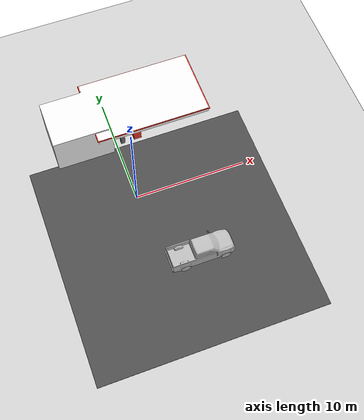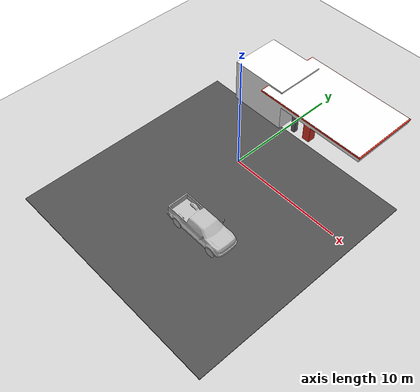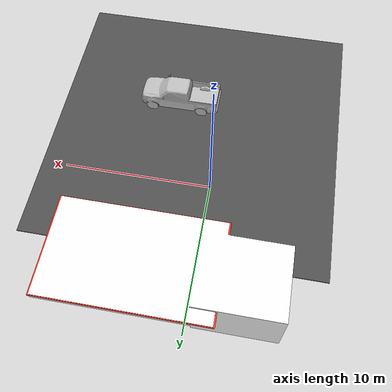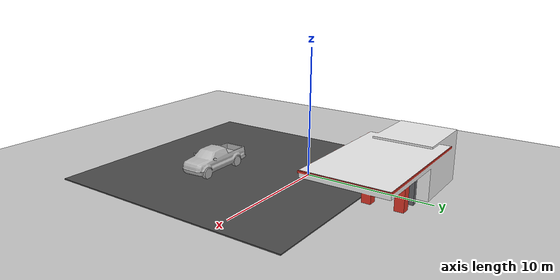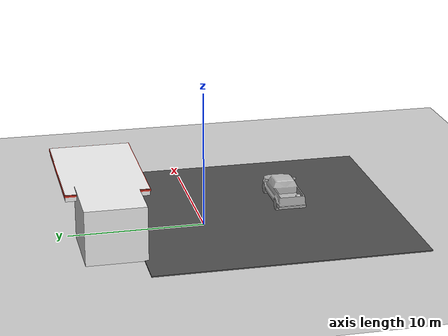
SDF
<sdf version="1.6">
 <world name="default">
  <light name="sun" type="directional">
   <pose>0 0 10 0 -0 0</pose>
   <diffuse>0.8 0.8 0.8 1</diffuse>
   <specular>0.1 0.1 0.1 1</specular>
   <attenuation>
    <range>1000</range>
    <constant>0.9</constant>
    <linear>0.01</linear>
    <quadratic>0.001</quadratic>
   </attenuation>
   <direction>-0.5 0.5 -1</direction>
  </light>
  <model name="ground_plane">
   <static>1</static>
   <link name="link">
    <collision name="collision">
     <geometry><plane><normal>0 0 1</normal><size>100 100</size></plane></geometry>
     <surface><friction><ode><mu>100</mu><mu2>50</mu2></ode></friction></surface>
    </collision>
    <visual name="visual">
     <cast_shadows>0</cast_shadows>
     <geometry><plane><normal>0 0 1</normal><size>100 100</size></plane></geometry>
     <material>
      <script><uri>file://media/materials/scripts/gazebo.material</uri><name>Gazebo/Grey</name></script>
     </material>
    </visual>
   </link>
  </model>
  <gravity>0 0 -9.8</gravity>
  <magnetic_field>6e-06 2.3e-05 -4.2e-05</magnetic_field>
  <atmosphere type="adiabatic"/>
  <physics name="default_physics" default="0" type="ode">
   <max_step_size>0.001</max_step_size>
   <real_time_factor>1</real_time_factor>
   <real_time_update_rate>1000</real_time_update_rate>
  </physics>
  <scene><ambient>0.4 0.4 0.4 1</ambient><background>0.7 0.7 0.7 1</background><shadows>1</shadows></scene>
  <spherical_coordinates>
   <surface_model>EARTH_WGS84</surface_model>
   <latitude_deg>0</latitude_deg>
   <longitude_deg>0</longitude_deg>
   <elevation>0</elevation>
   <heading_deg>0</heading_deg>
  </spherical_coordinates>
  <model name="Gas Station">
   <static>1</static>
   <link name="link">
    <collision name="collision">
     <geometry><mesh><uri>model://gas_station/meshes/gas_station.dae</uri><scale>1 1 1</scale></mesh></geometry>
    </collision>
    <visual name="visual">
     <geometry><mesh><uri>model://gas_station/meshes/gas_station.dae</uri><scale>1 1 1</scale></mesh></geometry>
     <material>
      <script>
       <uri>model://gas_station/materials/scripts</uri>
       <uri>model://gas_station/materials/textures</uri>
       <name>GasStation/Diffuse</name>
      </script>
      <shader type="normal_map_object_space"><normal_map>GasStation_Normal.png</normal_map></shader>
     </material>
    </visual>
   </link>
   <pose>0.828735 7.23732 0 0 -0 0</pose>
  </model>
  <model name="asphalt_plane">
   <static>1</static>
   <link name="link">
    <collision name="collision"><geometry><box><size>20 20 0.1</size></box></geometry></collision>
    <visual name="visual">
     <cast_shadows>0</cast_shadows>
     <geometry><box><size>20 20 0.1</size></box></geometry>
     <material>
      <script>
       <uri>model://asphalt_plane/materials/scripts</uri>
       <uri>model://asphalt_plane/materials/textures</uri>
       <name>vrc/asphalt</name>
      </script>
     </material>
    </visual>
   </link>
   <pose>1.73064 -4.67533 0 0 -0 0</pose>
  </model>
  <model name="pickup">
   <static>1</static>
   <link name="link">
    <collision name="collision">
     <pose>0 0 0 0 0 -1.5708</pose>
     <geometry><mesh><uri>model://pickup/meshes/pickup.dae</uri><scale>1 1 1</scale></mesh></geometry>
    </collision>
    <visual name="visual">
     <pose>0 0 0 0 0 -1.5708</pose>
     <geometry><mesh><uri>model://pickup/meshes/pickup.dae</uri><scale>1 1 1</scale></mesh></geometry>
    </visual>
   </link>
   <pose>3.43317 -6.8397 0 0 -0 0</pose>
  </model>
 </world>
</sdf>
